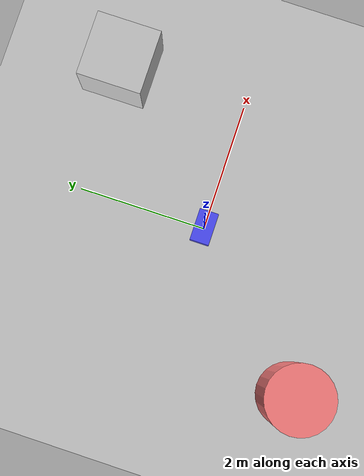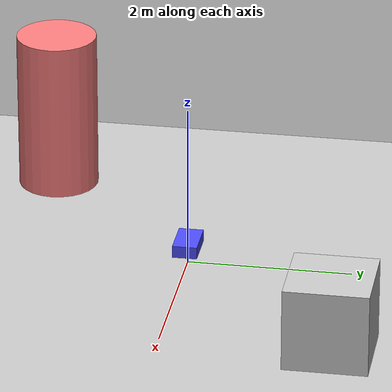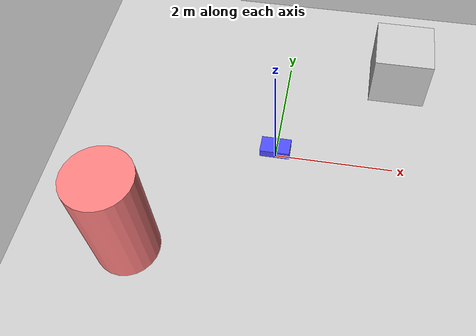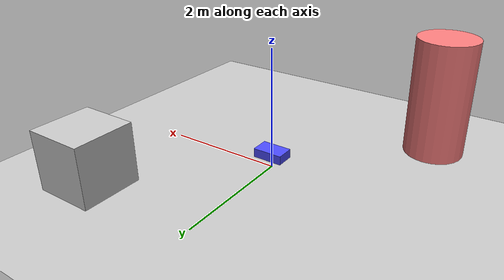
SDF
<?xml version="1.0" ?>
<sdf version="1.7">
  <world name="basic_world">
    <!-- Include the default Gazebo world configuration -->
    <include>
      <uri>model://ground_plane</uri>
    </include>

    <include>
      <uri>model://sun</uri>
    </include>

    <!-- Add a simple box obstacle -->
    <model name="box_obstacle">
      <pose>2 2 0.5 0 0 0</pose>
      <static>true</static>
      <link name="link">
        <collision name="collision">
          <geometry>
            <box>
              <size>1 1 1</size>
            </box>
          </geometry>
        </collision>
        <visual name="visual">
          <geometry>
            <box>
              <size>1 1 1</size>
            </box>
          </geometry>
          <material>
            <ambient>0.5 0.5 0.5 1</ambient>
            <diffuse>0.8 0.8 0.8 1</diffuse>
            <specular>0.1 0.1 0.1 1</specular>
          </material>
        </visual>
      </link>
    </model>

    <!-- Add a cylinder obstacle -->
    <model name="cylinder_obstacle">
      <pose>-2 -2 1.0 0 0 0</pose>
      <static>true</static>
      <link name="link">
        <collision name="collision">
          <geometry>
            <cylinder>
              <radius>0.5</radius>
              <length>2.0</length>
            </cylinder>
          </geometry>
        </collision>
        <visual name="visual">
          <geometry>
            <cylinder>
              <radius>0.5</radius>
              <length>2.0</length>
            </cylinder>
          </geometry>
          <material>
            <ambient>0.8 0.3 0.3 1</ambient>
            <diffuse>1.0 0.5 0.5 1</diffuse>
            <specular>0.2 0.2 0.2 1</specular>
          </material>
        </visual>
      </link>
    </model>

    <!-- Add a simple robot model -->
    <model name="simple_robot">
      <pose>0 0 0.25 0 0 0</pose>
      <link name="chassis">
        <pose>0 0 0 0 0 0</pose>
        <collision name="collision">
          <geometry>
            <box>
              <size>0.5 0.3 0.15</size>
            </box>
          </geometry>
        </collision>
        <visual name="visual">
          <geometry>
            <box>
              <size>0.5 0.3 0.15</size>
            </box>
          </geometry>
          <material>
            <ambient>0.1 0.1 0.8 1</ambient>
            <diffuse>0.3 0.3 1.0 1</diffuse>
            <specular>0.2 0.2 0.2 1</specular>
          </material>
        </visual>
        <inertial>
          <mass>1.0</mass>
          <inertia>
            <ixx>0.01</ixx>
            <ixy>0</ixy>
            <ixz>0</ixz>
            <iyy>0.01</iyy>
            <iyz>0</iyz>
            <izz>0.01</izz>
          </inertia>
        </inertial>
      </link>

      <!-- Left wheel -->
      <joint name="left_wheel_joint" type="continuous">
        <parent>chassis</parent>
        <child>left_wheel</child>
        <axis>
          <xyz>0 1 0</xyz>
        </axis>
      </joint>

      <link name="left_wheel">
        <collision name="collision">
          <geometry>
            <cylinder>
              <radius>0.1</radius>
              <length>0.05</length>
            </cylinder>
          </geometry>
        </collision>
        <visual name="visual">
          <geometry>
            <cylinder>
              <radius>0.1</radius>
              <length>0.05</length>
            </cylinder>
          </geometry>
          <material>
            <ambient>0.2 0.2 0.2 1</ambient>
            <diffuse>0.4 0.4 0.4 1</diffuse>
            <specular>0.1 0.1 0.1 1</specular>
          </material>
        </visual>
        <inertial>
          <mass>0.2</mass>
          <inertia>
            <ixx>0.001</ixx>
            <ixy>0</ixy>
            <ixz>0</ixz>
            <iyy>0.001</iyy>
            <iyz>0</iyz>
            <izz>0.001</izz>
          </inertia>
        </inertial>
      </link>

      <!-- Right wheel -->
      <joint name="right_wheel_joint" type="continuous">
        <parent>chassis</parent>
        <child>right_wheel</child>
        <axis>
          <xyz>0 1 0</xyz>
        </axis>
      </joint>

      <link name="right_wheel">
        <collision name="collision">
          <geometry>
            <cylinder>
              <radius>0.1</radius>
              <length>0.05</length>
            </cylinder>
          </geometry>
        </collision>
        <visual name="visual">
          <geometry>
            <cylinder>
              <radius>0.1</radius>
              <length>0.05</length>
            </cylinder>
          </geometry>
          <material>
            <ambient>0.2 0.2 0.2 1</ambient>
            <diffuse>0.4 0.4 0.4 1</diffuse>
            <specular>0.1 0.1 0.1 1</specular>
          </material>
        </visual>
        <inertial>
          <mass>0.2</mass>
          <inertia>
            <ixx>0.001</ixx>
            <ixy>0</ixy>
            <ixz>0</ixz>
            <iyy>0.001</iyy>
            <iyz>0</iyz>
            <izz>0.001</izz>
          </inertia>
        </inertial>
      </link>

      <!-- Position the wheels relative to the chassis -->
      <joint name="left_wheel_connection" type="fixed">
        <parent>chassis</parent>
        <child>left_wheel</child>
        <pose>-0.15 0.2 0 0 0 0</pose>
      </joint>

      <joint name="right_wheel_connection" type="fixed">
        <parent>chassis</parent>
        <child>right_wheel</child>
        <pose>-0.15 -0.2 0 0 0 0</pose>
      </joint>
    </model>

    <!-- Physics engine configuration -->
    <physics name="default_physics" type="ode">
      <max_step_size>0.001</max_step_size>
      <real_time_factor>1</real_time_factor>
      <real_time_update_rate>1000</real_time_update_rate>
      <gravity>0 0 -9.8</gravity>
    </physics>
  </world>
</sdf>
